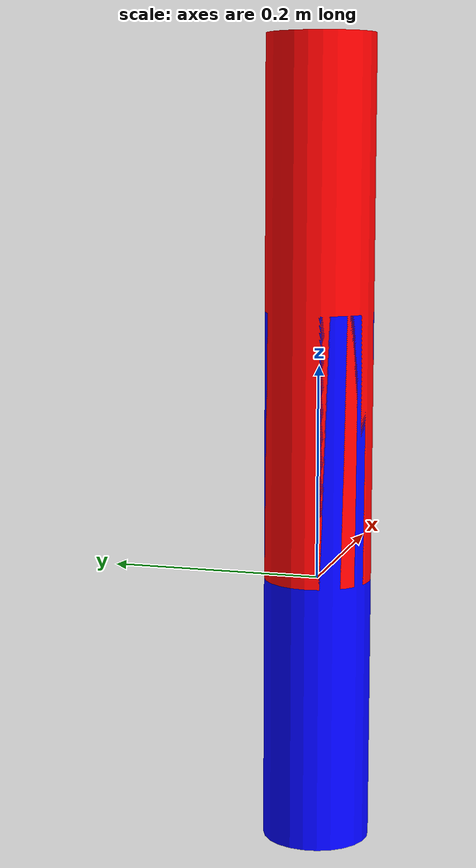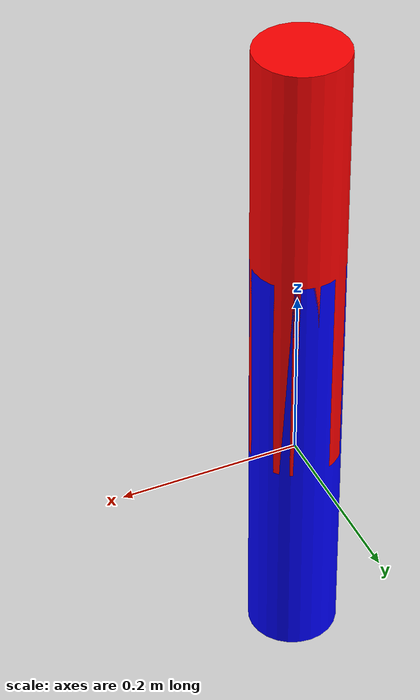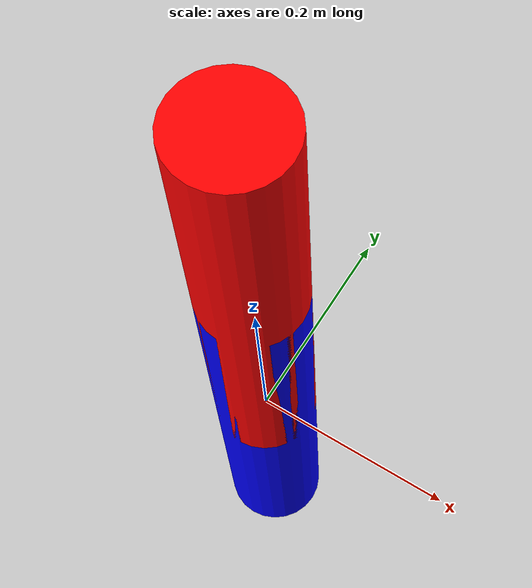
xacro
<?xml version="1.0"?>
<robot xmlns:xacro="http://www.ros.org/wiki/xacro" name="test_robot">

    <!-- Import test_robot urdf file -->
    <xacro:include filename="$(find dji_motor_hardwear_interface)/test/config/test_robot.urdf" />

    <!-- Import control_xacro -->
    <xacro:include filename="test_robot.ros2_control.xacro" />

</robot>

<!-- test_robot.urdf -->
<robot name="test_robot">
  <link name="base_link">
    <visual>
      <origin xyz="0 0 0" rpy="0 0 0"/>
      <geometry>
        <cylinder length="0.5" radius="0.05"/>
      </geometry>
      <material name="blue">
        <color rgba="0 0 1 1"/>
      </material>
    </visual>
  </link>
  <link name="link_1">
    <visual>
      <origin xyz="0 0 0" rpy="0 0 0"/>
      <geometry>
        <cylinder length="0.5" radius="0.05"/>
      </geometry>
      <material name="red">
        <color rgba="1 0 0 1"/>
      </material>
    </visual>
  </link>
  <joint name="GM6020_test_joint" type="revolute">
    <parent link="base_link"/>
    <child link="link_1"/>
    <origin xyz="0 0 0.25" rpy="0 0 0"/>
    <axis xyz="0 0 1"/>
    <limit lower="-1.57" upper="1.57" effort="1" velocity="1"/>
  </joint>
</robot>
